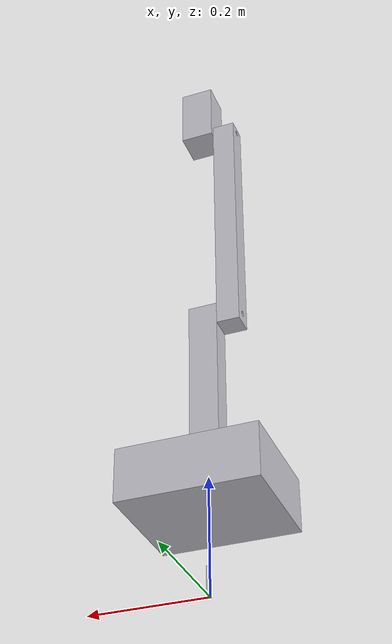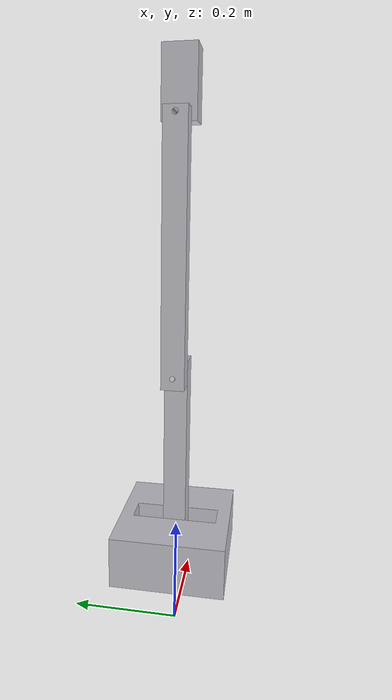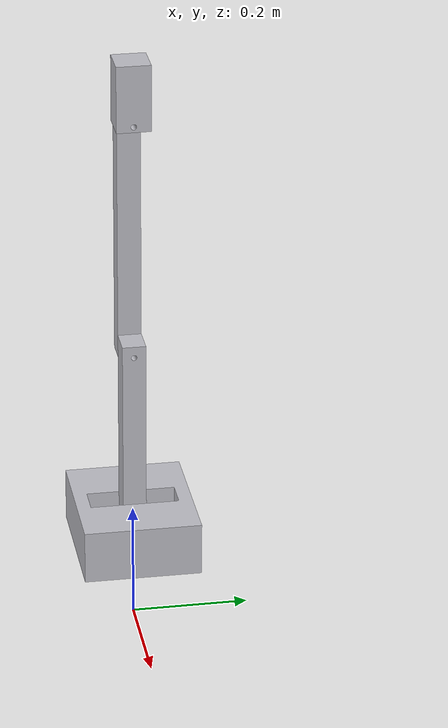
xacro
<?xml version="1.0" ?>
<robot name="arm" xmlns:xacro="http://www.ros.org/wiki/xacro">

<xacro:include filename="$(find arm_description)/urdf/materials.xacro" />
<xacro:include filename="$(find arm_description)/urdf/arm.trans" />
<xacro:include filename="$(find arm_description)/urdf/arm.gazebo" />
<link name="base_link">
  <inertial>
    <origin xyz="0.0 -1.4925041259863438e-17 0.06499999999999999" rpy="0 0 0"/>
    <mass value="38.26875"/>
    <inertia ixx="0.125649" iyy="0.253212" izz="0.27107" ixy="-0.0" iyz="-0.0" ixz="-0.0"/>
  </inertial>
  <visual>
    <origin xyz="0 0 0" rpy="0 0 0"/>
    <geometry>
      <mesh filename="file://$(find arm_description)/meshes/base_link.stl" scale="0.001 0.001 0.001"/>
    </geometry>
    <material name="silver"/>
  </visual>
  <collision>
    <origin xyz="0 0 0" rpy="0 0 0"/>
    <geometry>
      <mesh filename="file://$(find arm_description)/meshes/base_link.stl" scale="0.001 0.001 0.001"/>
    </geometry>
  </collision>
</link>

<link name="link_1_1">
  <inertial>
    <origin xyz="0.0 -1.9172293647565634e-17 0.044466790992911065" rpy="0 0 0"/>
    <mass value="29.791045516659985"/>
    <inertia ixx="0.126725" iyy="0.177006" izz="0.260409" ixy="-0.0" iyz="-0.0" ixz="-0.0"/>
  </inertial>
  <visual>
    <origin xyz="-0.0 0.0 -0.13" rpy="0 0 0"/>
    <geometry>
      <mesh filename="file://$(find arm_description)/meshes/link_1_1.stl" scale="0.001 0.001 0.001"/>
    </geometry>
    <material name="silver"/>
  </visual>
  <collision>
    <origin xyz="-0.0 0.0 -0.13" rpy="0 0 0"/>
    <geometry>
      <mesh filename="file://$(find arm_description)/meshes/link_1_1.stl" scale="0.001 0.001 0.001"/>
    </geometry>
  </collision>
</link>

<link name="link_2_1">
  <inertial>
    <origin xyz="-0.02500000000000002 -0.00020598185767762808 0.15763545013473024" rpy="0 0 0"/>
    <mass value="5.4333462441733"/>
    <inertia ixx="0.05532" iyy="0.05572" izz="0.001864" ixy="-0.0" iyz="-1e-06" ixz="-0.0"/>
  </inertial>
  <visual>
    <origin xyz="-0.025 0.0 -0.187" rpy="0 0 0"/>
    <geometry>
      <mesh filename="file://$(find arm_description)/meshes/link_2_1.stl" scale="0.001 0.001 0.001"/>
    </geometry>
    <material name="silver"/>
  </visual>
  <collision>
    <origin xyz="-0.025 0.0 -0.187" rpy="0 0 0"/>
    <geometry>
      <mesh filename="file://$(find arm_description)/meshes/link_2_1.stl" scale="0.001 0.001 0.001"/>
    </geometry>
  </collision>
</link>

<link name="link_3_1">
  <inertial>
    <origin xyz="-0.020000000000000018 1.8021706576164774e-07 0.2049579836943658" rpy="0 0 0"/>
    <mass value="5.602676995338638"/>
    <inertia ixx="0.09396" iyy="0.093954" izz="0.0015" ixy="-0.0" iyz="0.0" ixz="0.0"/>
  </inertial>
  <visual>
    <origin xyz="0.025 0.000205 -0.499621" rpy="0 0 0"/>
    <geometry>
      <mesh filename="file://$(find arm_description)/meshes/link_3_1.stl" scale="0.001 0.001 0.001"/>
    </geometry>
    <material name="silver"/>
  </visual>
  <collision>
    <origin xyz="0.025 0.000205 -0.499621" rpy="0 0 0"/>
    <geometry>
      <mesh filename="file://$(find arm_description)/meshes/link_3_1.stl" scale="0.001 0.001 0.001"/>
    </geometry>
  </collision>
</link>

<link name="link_4_1">
  <inertial>
    <origin xyz="0.028999999999999988 1.8021706575785303e-07 0.048622111514249" rpy="0 0 0"/>
    <mass value="3.001091821620515"/>
    <inertia ixx="0.004114" iyy="0.004104" izz="0.001692" ixy="-0.0" iyz="-0.0" ixz="-0.0"/>
  </inertial>
  <visual>
    <origin xyz="0.025 0.000205 -0.919071" rpy="0 0 0"/>
    <geometry>
      <mesh filename="file://$(find arm_description)/meshes/link_4_1.stl" scale="0.001 0.001 0.001"/>
    </geometry>
    <material name="silver"/>
  </visual>
  <collision>
    <origin xyz="0.025 0.000205 -0.919071" rpy="0 0 0"/>
    <geometry>
      <mesh filename="file://$(find arm_description)/meshes/link_4_1.stl" scale="0.001 0.001 0.001"/>
    </geometry>
  </collision>
</link>

<joint name="Revolute 1" type="continuous">
  <origin xyz="0.0 0.0 0.13" rpy="0 0 0"/>
  <parent link="base_link"/>
  <child link="link_1_1"/>
  <axis xyz="0.0 0.0 1.0"/>
</joint>

<joint name="Revolute 2" type="continuous">
  <origin xyz="0.025 0.0 0.057" rpy="0 0 0"/>
  <parent link="link_1_1"/>
  <child link="link_2_1"/>
  <axis xyz="1.0 0.0 0.0"/>
</joint>

<joint name="Revolute 3" type="continuous">
  <origin xyz="-0.05 -0.000205 0.312621" rpy="0 0 0"/>
  <parent link="link_2_1"/>
  <child link="link_3_1"/>
  <axis xyz="1.0 0.0 0.0"/>
</joint>

<joint name="Revolute 4" type="continuous">
  <origin xyz="0.0 0.0 0.41945" rpy="0 0 0"/>
  <parent link="link_3_1"/>
  <child link="link_4_1"/>
  <axis xyz="1.0 0.0 0.0"/>
</joint>

</robot>

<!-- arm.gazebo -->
<robot name="arm" xmlns:xacro="http://www.ros.org/wiki/xacro" >

<xacro:property name="body_color" value="Gazebo/Silver" />

<gazebo>
  <plugin name="control" filename="libgazebo_ros_control.so"/>
</gazebo>
<gazebo reference="base_link">
  <material>${body_color}</material>
  <mu1>0.2</mu1>
  <mu2>0.2</mu2>
  <self_collide>true</self_collide>
  <gravity>true</gravity>
</gazebo>

<gazebo reference="link_1_1">
  <material>${body_color}</material>
  <mu1>0.2</mu1>
  <mu2>0.2</mu2>
  <self_collide>true</self_collide>
</gazebo>

<gazebo reference="link_2_1">
  <material>${body_color}</material>
  <mu1>0.2</mu1>
  <mu2>0.2</mu2>
  <self_collide>true</self_collide>
</gazebo>

<gazebo reference="link_3_1">
  <material>${body_color}</material>
  <mu1>0.2</mu1>
  <mu2>0.2</mu2>
  <self_collide>true</self_collide>
</gazebo>

<gazebo reference="link_4_1">
  <material>${body_color}</material>
  <mu1>0.2</mu1>
  <mu2>0.2</mu2>
  <self_collide>true</self_collide>
</gazebo>

</robot>
